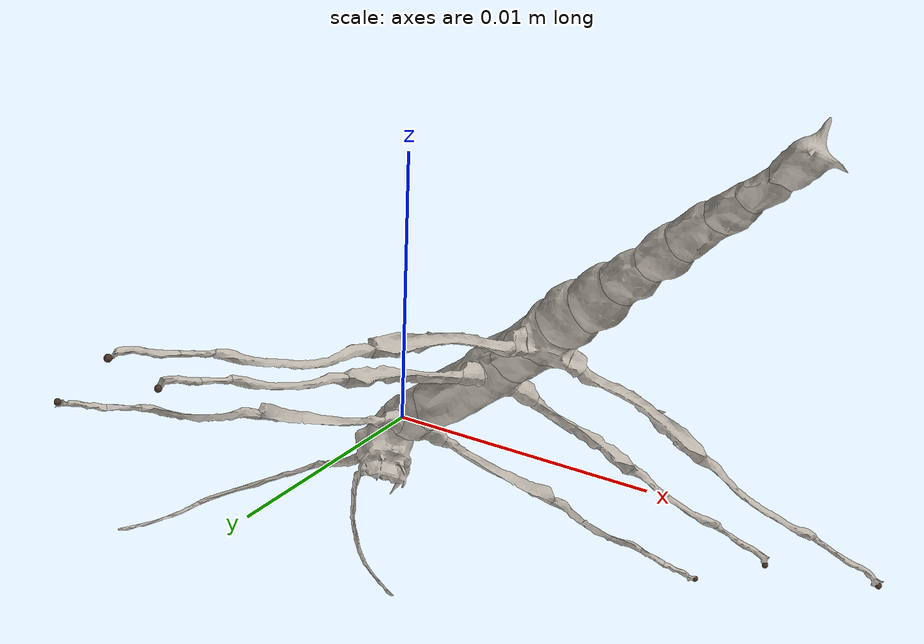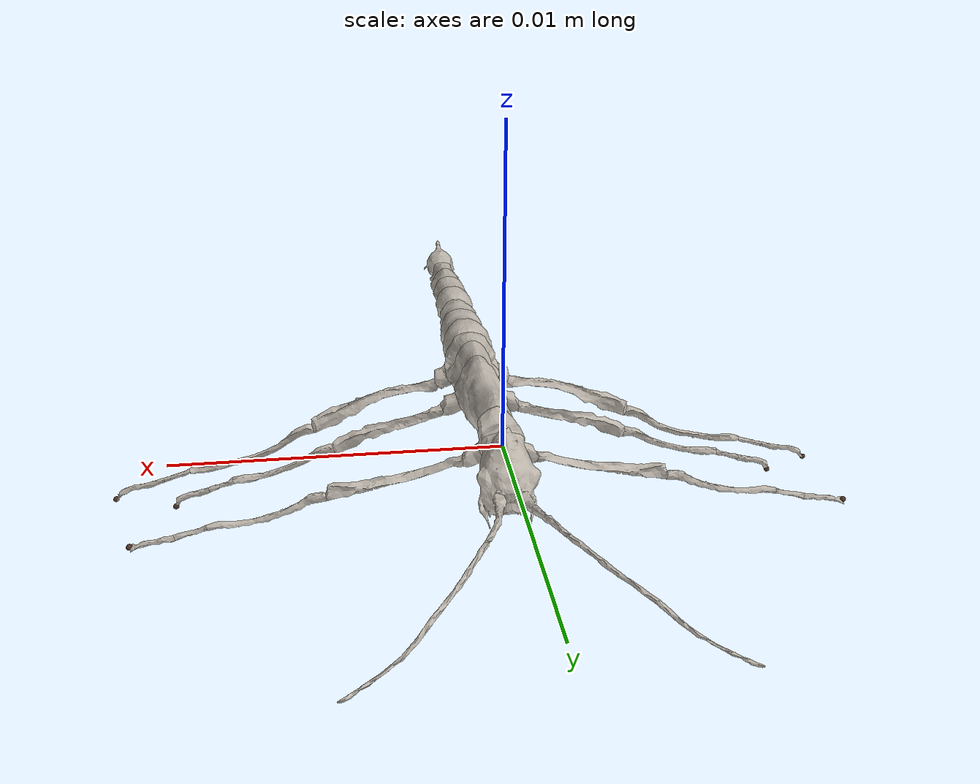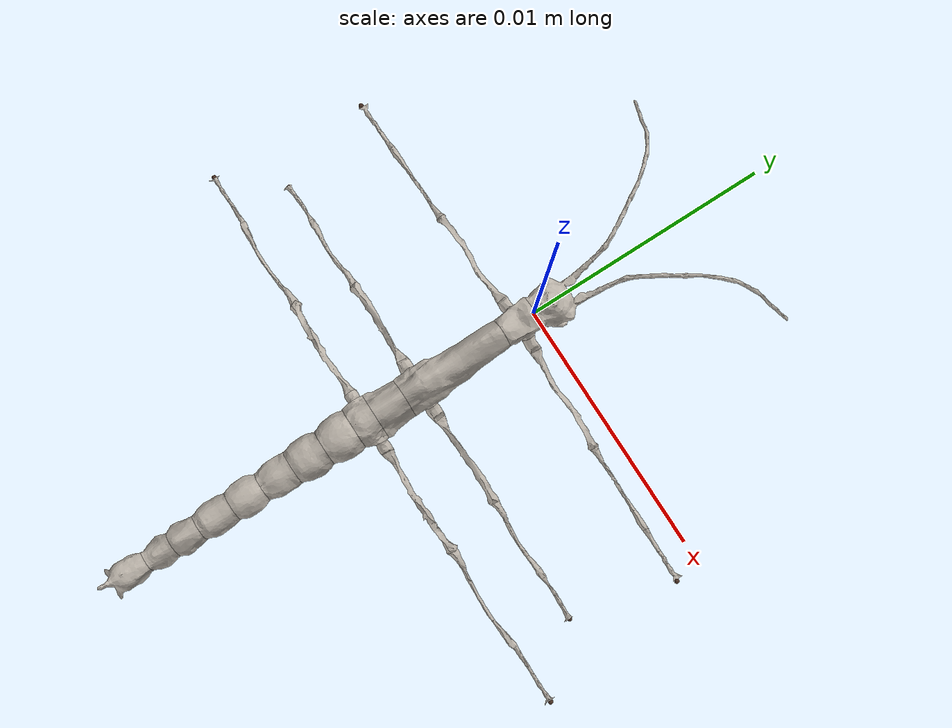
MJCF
<?xml version='1.0' encoding='utf-8'?>
<mujoco model="sungaya_mesh_fast">
  <default>
    <geom contype="0" conaffinity="0"/>
  </default>

  <include file="sungaya_inexpectata_mesh.xml"/>
</mujoco>

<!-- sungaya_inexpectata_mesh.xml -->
<mujoco model="sungaya">
    <option integrator="RK4"/>
    <visual>
        <global offwidth="2048" offheight="2048"/>
    </visual>
    <compiler angle="radian" autolimits="true"/>
    <custom>
        <numeric name="qpos0" data="0 0 0.05 0.7 0 0 0.7 0 0 0 0 0 0 0 0 0 0 0 0 0 0 0 0 0 0 0 0 0 0 0 0 0 0 0 0 0 0 0 0 0 0 0 0 0 0"/>
        <numeric name="dt" data="0.01"/>
        <numeric name="substeps" data="15"/>
        <numeric name="baumgarte_erp" data="0.1"/>
    </custom>
    <asset>
        <texture name="sungaya_tex" type="2d" file="stick_insect_urdf/meshes/obj/Sungaya_inexpectata_31mg.png"/>
        <material name="sungaya_mat" texture="sungaya_tex" specular="0.1" shininess="0.1"/>
        <mesh name="03-caput" file="stick_insect_urdf/meshes/obj/Sungaya_inexpectata_31mg.051.obj"/>
        <mesh name="04-t1" file="stick_insect_urdf/meshes/obj/Sungaya_inexpectata_31mg.016.obj"/>
        <mesh name="05-t2" file="stick_insect_urdf/meshes/obj/Sungaya_inexpectata_31mg.018.obj"/>
        <mesh name="06-t3" file="stick_insect_urdf/meshes/obj/Sungaya_inexpectata_31mg.019.obj"/>
        <mesh name="07-a2" file="stick_insect_urdf/meshes/obj/Sungaya_inexpectata_31mg.020.obj"/>
        <mesh name="08-a3" file="stick_insect_urdf/meshes/obj/Sungaya_inexpectata_31mg.021.obj"/>
        <mesh name="09-a4" file="stick_insect_urdf/meshes/obj/Sungaya_inexpectata_31mg.022.obj"/>
        <mesh name="10-a5" file="stick_insect_urdf/meshes/obj/Sungaya_inexpectata_31mg.023.obj"/>
        <mesh name="11-a6" file="stick_insect_urdf/meshes/obj/Sungaya_inexpectata_31mg.024.obj"/>
        <mesh name="12-a7" file="stick_insect_urdf/meshes/obj/Sungaya_inexpectata_31mg.025.obj"/>
        <mesh name="13-a8" file="stick_insect_urdf/meshes/obj/Sungaya_inexpectata_31mg.026.obj"/>
        <mesh name="14-a9" file="stick_insect_urdf/meshes/obj/Sungaya_inexpectata_31mg.027.obj"/>
        <mesh name="15-a10" file="stick_insect_urdf/meshes/obj/Sungaya_inexpectata_31mg.028.obj"/>
        <mesh name="16-f-l-coxa" file="stick_insect_urdf/meshes/obj/Sungaya_inexpectata_31mg.004.obj"/>
        <mesh name="17-f-l-femur" file="stick_insect_urdf/meshes/obj/Sungaya_inexpectata_31mg.003.obj"/>
        <mesh name="18-f-l-tibia" file="stick_insect_urdf/meshes/obj/Sungaya_inexpectata_31mg.002.obj"/>
        <mesh name="19-f-l-tarsus" file="stick_insect_urdf/meshes/obj/Sungaya_inexpectata_31mg.001.obj"/>
        <mesh name="20-f-l-claws" file="stick_insect_urdf/meshes/obj/Sungaya_inexpectata_31mg.obj"/>
        <mesh name="21-m-l-coxa" file="stick_insect_urdf/meshes/obj/Sungaya_inexpectata_31mg.009.obj"/>
        <mesh name="22-m-l-femur" file="stick_insect_urdf/meshes/obj/Sungaya_inexpectata_31mg.008.obj"/>
        <mesh name="23-m-l-tibia" file="stick_insect_urdf/meshes/obj/Sungaya_inexpectata_31mg.007.obj"/>
        <mesh name="24-m-l-tarsus" file="stick_insect_urdf/meshes/obj/Sungaya_inexpectata_31mg.006.obj"/>
        <mesh name="25-m-l-claws" file="stick_insect_urdf/meshes/obj/Sungaya_inexpectata_31mg.005.obj"/>
        <mesh name="26-h-l-coxa" file="stick_insect_urdf/meshes/obj/Sungaya_inexpectata_31mg.014.obj"/>
        <mesh name="27-h-l-femur" file="stick_insect_urdf/meshes/obj/Sungaya_inexpectata_31mg.013.obj"/>
        <mesh name="28-h-l-tibia" file="stick_insect_urdf/meshes/obj/Sungaya_inexpectata_31mg.012.obj"/>
        <mesh name="29-h-l-tarsus" file="stick_insect_urdf/meshes/obj/Sungaya_inexpectata_31mg.011.obj"/>
        <mesh name="30-h-l-claws" file="stick_insect_urdf/meshes/obj/Sungaya_inexpectata_31mg.010.obj"/>
        <mesh name="31-f-r-coxa" file="stick_insect_urdf/meshes/obj/Sungaya_inexpectata_31mg.039.obj"/>
        <mesh name="32-f-r-femur" file="stick_insect_urdf/meshes/obj/Sungaya_inexpectata_31mg.038.obj"/>
        <mesh name="33-f-r-tibia" file="stick_insect_urdf/meshes/obj/Sungaya_inexpectata_31mg.037.obj"/>
        <mesh name="35-f-r-tarsus" file="stick_insect_urdf/meshes/obj/Sungaya_inexpectata_31mg.036.obj"/>
        <mesh name="36-f-r-claws" file="stick_insect_urdf/meshes/obj/Sungaya_inexpectata_31mg.035.obj"/>
        <mesh name="37-m-r-coxa" file="stick_insect_urdf/meshes/obj/Sungaya_inexpectata_31mg.044.obj"/>
        <mesh name="38-m-r-femur" file="stick_insect_urdf/meshes/obj/Sungaya_inexpectata_31mg.043.obj"/>
        <mesh name="39-m-r-tibia" file="stick_insect_urdf/meshes/obj/Sungaya_inexpectata_31mg.042.obj"/>
        <mesh name="40-m-r-tarsus" file="stick_insect_urdf/meshes/obj/Sungaya_inexpectata_31mg.041.obj"/>
        <mesh name="41-m-r-claws" file="stick_insect_urdf/meshes/obj/Sungaya_inexpectata_31mg.040.obj"/>
        <mesh name="42-h-r-coxa" file="stick_insect_urdf/meshes/obj/Sungaya_inexpectata_31mg.049.obj"/>
        <mesh name="43-h-r-femur" file="stick_insect_urdf/meshes/obj/Sungaya_inexpectata_31mg.048.obj"/>
        <mesh name="44-h-r-tibia" file="stick_insect_urdf/meshes/obj/Sungaya_inexpectata_31mg.047.obj"/>
        <mesh name="45-h-r-tarsus" file="stick_insect_urdf/meshes/obj/Sungaya_inexpectata_31mg.046.obj"/>
        <mesh name="46-h-r-claws" file="stick_insect_urdf/meshes/obj/Sungaya_inexpectata_31mg.045.obj"/>
    </asset>
    <worldbody>
        <light diffuse=".75 .75 .75" pos="0 0 0.5" dir="0 0 -1"/>
        <body name="reference_base" pos="0 0 0">
            <joint armature="0" damping="0" limited="false" margin="0.01" name="root" pos="0 0 0" type="free"/>
            <site name="head" size="0.0001"/>
            <camera name="close_profile" mode="trackcom" pos=".04 -.04 .02" xyaxes="1 1 0 -0.5 0.5 2" fovy="35"/>
            <camera name="extreme_closeup" mode="trackcom" pos=".02 -.02 0.008" xyaxes="1 1 0 -1 1 4" fovy="30"/>
            <camera name="orbit_000" mode="trackcom" pos="0.0634 0.0000 0.0296" xyaxes="0.0000 1.0000 0.0000 -0.4226 0.0000 0.9063" fovy="40"/>
            <camera name="orbit_045" mode="trackcom" pos="0.0449 0.0449 0.0296" xyaxes="-0.7071 0.7071 0.0000 -0.2988 -0.2988 0.9063" fovy="40"/>
            <camera name="orbit_090" mode="trackcom" pos="0.0000 0.0634 0.0296" xyaxes="-1.0000 0.0000 0.0000 -0.0000 -0.4226 0.9063" fovy="40"/>
            <camera name="orbit_135" mode="trackcom" pos="-0.0449 0.0449 0.0296" xyaxes="-0.7071 -0.7071 0.0000 0.2988 -0.2988 0.9063" fovy="40"/>
            <camera name="orbit_180" mode="trackcom" pos="-0.0634 0.0000 0.0296" xyaxes="-0.0000 -1.0000 0.0000 0.4226 -0.0000 0.9063" fovy="40"/>
            <camera name="orbit_225" mode="trackcom" pos="-0.0449 -0.0449 0.0296" xyaxes="0.7071 -0.7071 0.0000 0.2988 0.2988 0.9063" fovy="40"/>
            <camera name="orbit_270" mode="trackcom" pos="-0.0000 -0.0634 0.0296" xyaxes="1.0000 -0.0000 0.0000 0.0000 0.4226 0.9063" fovy="40"/>
            <camera name="orbit_315" mode="trackcom" pos="0.0449 -0.0449 0.0296" xyaxes="0.7071 0.7071 -0.0000 -0.2988 0.2988 0.9063" fovy="40"/>
            <!-- Overhead, looking straight down (image right = world +x, up = +y). -->
            <camera name="top_down" mode="trackcom" pos="0 0 0.11" xyaxes="1 0 0 0 1 0" fovy="40"/>
            <geom name="03-caput" type="mesh" mesh="03-caput" pos="-4.93919e-06 0.0008534044 -0.00056868081" material="sungaya_mat" density="1000"/>
            <geom name="04-t1" type="mesh" mesh="04-t1" pos="5.17067e-06 -0.00071373116 -0.00015030356" material="sungaya_mat" density="1000"/>
            <body name="04-t1-l" pos="4.212954e-05 -0.00142994616 -0.00024617367">
                <joint type="hinge" name="04-t1-l" pos="0 0 0" axis="1 0 7.55e-08" range="-0.087266 0.087266" />
                <geom name="05-t2" type="mesh" mesh="05-t2" pos="-1.168428e-05 -0.00229186984 -4.027273e-05" material="sungaya_mat" density="1000"/>
                <body name="05-t2-l" pos="-1.4549e-06 -0.0043079881 -3.550776e-05">
                    <joint type="hinge" name="05-t2-l" pos="0 0 0" axis="1 0 7.55e-08" range="-0.087266 0.087266" />
                    <geom name="06-t3" type="mesh" mesh="06-t3" pos="5.37896e-06 -0.0006546122 -4.160991e-05" material="sungaya_mat" density="1000"/>
                    <body name="06-t3-l" pos="-1.602613e-05 -0.00127102528 2.06451e-06">
                        <joint type="hinge" name="06-t3-l" pos="0 0 0" axis="1 0 7.55e-08" range="-0.087266 0.087266" />
                        <geom name="07-a2" type="mesh" mesh="07-a2" pos="2.221604e-05 -0.00044320215 3.139261e-05" material="sungaya_mat" density="1000"/>
                        <body name="07-a2-l" pos="2.542162e-05 -0.00090925378 0.00010091614">
                            <joint type="hinge" name="07-a2-l" pos="0 0 0" axis="1 0 7.55e-08" range="-1.134464 1.134464"/>
                            <geom name="08-a3" type="mesh" mesh="08-a3" pos="3.80757e-06 -0.0006355982 2.586899e-05" material="sungaya_mat" density="1000"/>
                            <body name="08-a3-l" pos="8.07024e-06 -0.00129344233 5.316696e-05">
                                <joint type="hinge" name="08-a3-l" pos="0 0 0" axis="1 0 7.55e-08" range="-1.134464 1.134464"/>
                                <geom name="09-a4" type="mesh" mesh="09-a4" pos="4.23251e-06 -0.00064921647 -4.324162e-05" material="sungaya_mat" density="1000"/>
                                <body name="09-a4-l" pos="8.11249e-06 -0.00134961947 4.000925e-05">
                                    <joint type="hinge" name="09-a4-l" pos="0 0 0" axis="1 0 7.55e-08" range="-1.134464 1.134464"/>
                                    <geom name="10-a5" type="mesh" mesh="10-a5" pos="3.93223e-06 -0.00062264595 -3.370976e-05" material="sungaya_mat" density="1000"/>
                                    <body name="10-a5-l" pos="8.62755e-06 -0.00131172151 -2.10435e-05">
                                        <joint type="hinge" name="10-a5-l" pos="0 0 0" axis="1 0 7.55e-08" range="-1.134464 1.134464"/>
                                        <geom name="11-a6" type="mesh" mesh="11-a6" pos="3.77219e-06 -0.00064754183 2.410548e-05" material="sungaya_mat" density="1000"/>
                                        <body name="11-a6-l" pos="8.04149e-06 -0.00126429298 5.285629e-05">
                                            <joint type="hinge" name="11-a6-l" pos="0 0 0" axis="1 0 7.55e-08" range="-1.134464 1.134464"/>
                                            <geom name="12-a7" type="mesh" mesh="12-a7" pos="4.16505e-06 -0.00067832135 3.601049e-05" material="sungaya_mat" density="1000"/>
                                            <body name="12-a7-l" pos="2.355316e-05 -0.00140457414 -1.607895e-05">
                                                <joint type="hinge" name="12-a7-l" pos="0 0 0" axis="1 0 7.55e-08" range="-1.134464 1.134464"/>
                                                <geom name="13-a8" type="mesh" mesh="13-a8" pos="-1.192655e-05 -0.00055250432 2.861764e-05" material="sungaya_mat" density="1000"/>
                                                <body name="13-a8-l" pos="-7.70643e-06 -0.00113178045 0.00013272798">
                                                    <joint type="hinge" name="13-a8-l" pos="0 0 0" axis="1 0 7.55e-08" range="-1.134464 1.134464"/>
                                                    <geom name="14-a9" type="mesh" mesh="14-a9" pos="2.90333e-06 -0.00050837733 -9.902848e-05" material="sungaya_mat" density="1000"/>
                                                    <body name="14-a9-l" pos="6.80901e-06 -0.00109023508 -9.047122e-05">
                                                        <joint type="hinge" name="14-a9-l" pos="0 0 0" axis="1 0 7.55e-08" range="-1.134464 1.134464"/>
                                                        <geom name="15-a10" type="mesh" mesh="15-a10" pos="4.78492e-06 -0.0007736003 6.360079e-05" material="sungaya_mat" density="1000"/>
                                                    </body>
                                                </body>
                                            </body>
                                        </body>
                                    </body>
                                </body>
                            </body>
                        </body>
                        <body name="26-h-l-coxa-l" pos="-0.00081721315 -0.00035620795 -0.00046644267">
                            <joint type="hinge" name="26-h-l-coxa-l" pos="0 0 0" axis="0 0 1" range="-3.14159 3.14159"/>
                            <geom name="26-h-l-coxa" type="mesh" mesh="26-h-l-coxa" pos="-0.00022547226 2.339086e-05 -0.00010656845" material="sungaya_mat" density="1000"/>
                            <body name="27-h-l-femur-l" pos="-0.00042385235 4.569365e-05 -0.00030739477">
                                <joint type="hinge" name="27-h-l-femur-l" pos="0 0 0" axis="0 -1 -4.371e-08" range="-3.14159 3.14159"/>
                                <geom name="27-h-l-femur" type="mesh" mesh="27-h-l-femur" pos="-0.00254038163 -6.491935e-05 -0.00075768569" material="sungaya_mat" density="1000"/>
                                <body name="28-h-l-tibia-l" pos="-0.00447626784 -1.959066e-05 -0.00153649854">
                                    <inertial pos="0 0 0" mass="1.200e-06" diaginertia="1.350e-14 4.067e-13 4.067e-13"/>
                                    <joint type="hinge" name="28-h-l-tibia-l" pos="0 0 0" axis="0 -1 -4.371e-08" range="-3.14159 3.14159"/>
                                    <geom name="28-h-l-tibia" type="mesh" mesh="28-h-l-tibia" pos="-0.00199367991 -8.205551e-05 -0.00078430958" material="sungaya_mat" density="1000"/>
                                    <body name="29-h-l-tarsus-l" pos="-0.00449651713 -3.206206e-05 -0.00141770416">
                                        <inertial pos="0 0 0" mass="6.000e-07" diaginertia="6.750e-15 2.034e-13 2.034e-13"/>
                                        <joint type="hinge" name="29-h-l-tarsus-l" pos="0 0 0" axis="0 -1 -4.371e-08" range="-0.349066 0.349066"/>
                                        <geom name="29-h-l-tarsus" type="mesh" mesh="29-h-l-tarsus" pos="-0.00042561069 5.40953e-06 -0.00014981977" material="sungaya_mat" density="1000"/>
                                        <body name="30-h-l-claws-l" pos="-0.00091560278 7.69488e-06 -0.00029699854">
                                            <inertial pos="0 0 0" mass="2.000e-07" diaginertia="2.250e-15 6.779e-14 6.779e-14"/>
                                            <joint type="hinge" name="30-h-l-claws-l" pos="0 0 0" axis="0 -1 -4.371e-08" range="-1.570796 0.000000"/>
                                            <geom name="30-h-l-claws" type="mesh" mesh="30-h-l-claws" pos="-0.00094383769 -1.53131e-05 -0.00026759366" material="sungaya_mat" density="1000"/>
                                            <geom name="claw_collide_hl" type="sphere" size="0.0001" pos="-0.00176783769 -1.83131e-05 -0.00067259366" contype="1" conaffinity="1" condim="3" rgba="0.3 0.2 0.15 1"/>
                                        </body>
                                    </body>
                                </body>
                            </body>
                        </body>
                        <body name="42-h-r-coxa-l" pos="0.00086174608 -0.000345635 -0.00046515831">
                            <joint type="hinge" name="42-h-r-coxa-l" pos="0 0 0" axis="0 0 1" range="-3.14159 3.14159"/>
                            <geom name="42-h-r-coxa" type="mesh" mesh="42-h-r-coxa" pos="0.00022532267 2.622965e-05 -0.00010622357" material="sungaya_mat" density="1000"/>
                            <body name="43-h-r-femur-l" pos="0.00042371207 5.103106e-05 -0.0003067471">
                                <joint type="hinge" name="43-h-r-femur-l" pos="0 0 0" axis="0 -1 -4.371e-08" range="-3.14159 3.14159"/>
                                <geom name="43-h-r-femur" type="mesh" mesh="43-h-r-femur" pos="0.0025421537 -3.291393e-05 -0.00075379765" material="sungaya_mat" density="1000"/>
                                <body name="44-h-r-tibia-l" pos="0.00447850488 3.679947e-05 -0.00152964774">
                                    <inertial pos="0 0 0" mass="1.200e-06" diaginertia="1.350e-14 4.067e-13 4.067e-13"/>
                                    <joint type="hinge" name="44-h-r-tibia-l" pos="0 0 0" axis="0 -1 -4.371e-08" range="-3.14159 3.14159"/>
                                    <geom name="44-h-r-tibia" type="mesh" mesh="44-h-r-tibia" pos="0.00199575583 -5.69335e-05 -0.0007812588" material="sungaya_mat" density="1000"/>
                                    <body name="45-h-r-tarsus-l" pos="0.00449872622 2.45836e-05 -0.00141082448">
                                        <inertial pos="0 0 0" mass="6.000e-07" diaginertia="6.750e-15 2.034e-13 2.034e-13"/>
                                        <joint type="hinge" name="45-h-r-tarsus-l" pos="0 0 0" axis="0 -1 -4.371e-08" range="-0.349066 0.349066"/>
                                        <geom name="45-h-r-tarsus" type="mesh" mesh="45-h-r-tarsus" pos="0.00042573921 1.077104e-05 -0.00014916877" material="sungaya_mat" density="1000"/>
                                        <body name="46-h-r-claws-l" pos="0.0009158887 1.922884e-05 -0.00029559783">
                                            <inertial pos="0 0 0" mass="2.000e-07" diaginertia="2.250e-15 6.779e-14 6.779e-14"/>
                                            <joint type="hinge" name="46-h-r-claws-l" pos="0 0 0" axis="-1.907e-08 -1 -4.371e-08" range="0.000000 1.570796"/>
                                            <geom name="46-h-r-claws" type="mesh" mesh="46-h-r-claws" pos="0.00094436482 -3.42238e-06 -0.00026615011" material="sungaya_mat" density="1000"/>
                                            <geom name="claw_collide_hr" type="sphere" size="0.0001" pos="0.00176936482 3.57762e-06 -0.00067015011" contype="1" conaffinity="1" condim="3" rgba="0.3 0.2 0.15 1"/>
                                        </body>
                                    </body>
                                </body>
                            </body>
                        </body>
                    </body>
                    <body name="21-m-l-coxa-l" pos="-0.00071249704 0.00073767244 -0.00045217428">
                        <joint type="hinge" name="21-m-l-coxa-l" pos="0 0 0" axis="0 0 1" range="-3.14159 3.14159"/>
                        <geom name="21-m-l-coxa" type="mesh" mesh="21-m-l-coxa" pos="-0.00027025153 -4.02329e-05 -0.00012987666" material="sungaya_mat" density="1000"/>
                        <body name="22-m-l-femur-l" pos="-0.00063080399 -3.517978e-05 -0.00031548744">
                            <joint type="hinge" name="22-m-l-femur-l" pos="0 0 0" axis="0 -1 -4.371e-08" range="-3.14159 3.14159"/>
                            <geom name="22-m-l-femur" type="mesh" mesh="22-m-l-femur" pos="-0.00210535526 7.364876e-05 -0.00060791074" material="sungaya_mat" density="1000"/>
                            <body name="23-m-l-tibia-l" pos="-0.00373081351 8.107792e-05 -0.00116356998">
                                <inertial pos="0 0 0" mass="1.200e-06" diaginertia="1.350e-14 4.067e-13 4.067e-13"/>
                                <joint type="hinge" name="23-m-l-tibia-l" pos="0 0 0" axis="0 -1 -4.371e-08" range="-3.14159 3.14159"/>
                                <geom name="23-m-l-tibia" type="mesh" mesh="23-m-l-tibia" pos="-0.0015941062 -3.561354e-05 -0.00056001171" material="sungaya_mat" density="1000"/>
                                <body name="24-m-l-tarsus-l" pos="-0.00345331943 -7.4762e-07 -0.00104214554">
                                    <inertial pos="0 0 0" mass="6.000e-07" diaginertia="6.750e-15 2.034e-13 2.034e-13"/>
                                    <joint type="hinge" name="24-m-l-tarsus-l" pos="0 0 0" axis="0 -1 -4.371e-08" range="-0.349066 0.349066"/>
                                    <geom name="24-m-l-tarsus" type="mesh" mesh="24-m-l-tarsus" pos="-0.00038003828 9.70718e-06 -0.00011728588" material="sungaya_mat" density="1000"/>
                                    <body name="25-m-l-claws-l" pos="-0.00083134137 2.904632e-05 -0.00025122333">
                                        <inertial pos="0 0 0" mass="2.000e-07" diaginertia="2.250e-15 6.779e-14 6.779e-14"/>
                                        <joint type="hinge" name="25-m-l-claws-l" pos="0 0 0" axis="0 -1 -4.371e-08" range="-1.570796 0.000000"/>
                                        <geom name="25-m-l-claws" type="mesh" mesh="25-m-l-claws" pos="-0.00065638963 -3.338582e-05 -0.00020578038" material="sungaya_mat" density="1000"/>
                                        <geom name="claw_collide_ml" type="sphere" size="0.0001" pos="-0.00115938963 -3.338582e-05 -0.00057778038" contype="1" conaffinity="1" condim="3" rgba="0.3 0.2 0.15 1"/>
                                    </body>
                                </body>
                            </body>
                        </body>
                    </body>
                    <body name="37-m-r-coxa-l" pos="0.00069518527 0.000746537 -0.00045109761">
                        <joint type="hinge" name="37-m-r-coxa-l" pos="0 0 0" axis="0 0 1" range="-3.14159 3.14159"/>
                        <geom name="37-m-r-coxa" type="mesh" mesh="37-m-r-coxa" pos="0.00027093512 -3.682473e-05 -0.00012946269" material="sungaya_mat" density="1000"/>
                        <body name="38-m-r-femur-l" pos="0.0006316778 -2.722791e-05 -0.00031452236">
                            <joint type="hinge" name="38-m-r-femur-l" pos="0 0 0" axis="0 -1 -4.371e-08" range="-3.14159 3.14159"/>
                            <geom name="38-m-r-femur" type="mesh" mesh="38-m-r-femur" pos="0.00210518856 0.00010016328 -0.00060469005" material="sungaya_mat" density="1000"/>
                            <body name="39-m-r-tibia-l" pos="0.00373127311 0.00012806733 -0.00115786097">
                                <inertial pos="0 0 0" mass="1.200e-06" diaginertia="1.350e-14 4.067e-13 4.067e-13"/>
                                <joint type="hinge" name="39-m-r-tibia-l" pos="0 0 0" axis="0 -1 -4.371e-08" range="-3.14159 3.14159"/>
                                <geom name="39-m-r-tibia" type="mesh" mesh="39-m-r-tibia" pos="0.00159528293 -1.552957e-05 -0.00055757165" material="sungaya_mat" density="1000"/>
                                <body name="40-m-r-tarsus-l" pos="0.00345464516 4.275376e-05 -0.00103686168">
                                    <inertial pos="0 0 0" mass="6.000e-07" diaginertia="6.750e-15 2.034e-13 2.034e-13"/>
                                    <joint type="hinge" name="40-m-r-tarsus-l" pos="0 0 0" axis="0 -1 -4.371e-08" range="-0.349066 0.349066"/>
                                    <geom name="40-m-r-tarsus" type="mesh" mesh="40-m-r-tarsus" pos="0.00038006436 1.449347e-05 -0.0001167038" material="sungaya_mat" density="1000"/>
                                    <body name="41-m-r-claws-l" pos="0.00083129201 3.951602e-05 -0.00024995045">
                                        <inertial pos="0 0 0" mass="2.000e-07" diaginertia="2.250e-15 6.779e-14 6.779e-14"/>
                                        <joint type="hinge" name="41-m-r-claws-l" pos="0 0 0" axis="0 -1 -4.371e-08" range="0.000000 1.570796"/>
                                        <geom name="41-m-r-claws" type="mesh" mesh="41-m-r-claws" pos="0.00065707322 -2.511451e-05 -0.00020477572" material="sungaya_mat" density="1000"/>
                                        <geom name="claw_collide_mr" type="sphere" size="0.0001" pos="0.00116007322 -1.911451e-05 -0.00057577572" contype="1" conaffinity="1" condim="3" rgba="0.3 0.2 0.15 1"/>
                                    </body>
                                </body>
                            </body>
                        </body>
                    </body>
                </body>
                <body name="16-f-l-coxa-l" pos="-0.00058466167 0.0008655265 -0.00026834305">
                    <joint type="hinge" name="16-f-l-coxa-l" pos="0 0 0" axis="0 0 1" range="-3.14159 3.14159"/>
                    <geom name="16-f-l-coxa" type="mesh" mesh="16-f-l-coxa" pos="-0.0002788456 -3.884686e-05 -5.26107e-05" material="sungaya_mat" density="1000"/>
                    <body name="17-f-l-femur-l" pos="-0.00062062964 -3.040908e-05 -0.00020541716">
                        <joint type="hinge" name="17-f-l-femur-l" pos="0 0 0" axis="0 -1 -4.371e-08" range="-3.14159 3.14159"/>
                        <geom name="17-f-l-femur" type="mesh" mesh="17-f-l-femur" pos="-0.00236304384 -6.913254e-05 -0.00054229825" material="sungaya_mat" density="1000"/>
                        <body name="18-f-l-tibia-l" pos="-0.00421774574 -8.422183e-05 -0.00099440338">
                            <inertial pos="0 0 0" mass="1.200e-06" diaginertia="1.350e-14 4.067e-13 4.067e-13"/>
                            <joint type="hinge" name="18-f-l-tibia-l" pos="0 0 0" axis="0 -1 -4.371e-08" range="-3.14159 3.14159"/>
                            <geom name="18-f-l-tibia" type="mesh" mesh="18-f-l-tibia" pos="-0.00163057772 2.05496e-06 -0.00038302678" material="sungaya_mat" density="1000"/>
                            <body name="19-f-l-tarsus-l" pos="-0.00369065069 2.67429e-06 -0.00080730731">
                                <inertial pos="0 0 0" mass="6.000e-07" diaginertia="6.750e-15 2.034e-13 2.034e-13"/>
                                <joint type="hinge" name="19-f-l-tarsus-l" pos="0 0 0" axis="0 -1 -4.371e-08" range="-0.349066 0.349066"/>
                                <geom name="19-f-l-tarsus" type="mesh" mesh="19-f-l-tarsus" pos="-0.00049544778 -4.03821e-06 -0.00014018174" material="sungaya_mat" density="1000"/>
                                <body name="20-f-l-claws-l" pos="-0.00100061204 -2.044067e-05 -0.00028160657">
                                    <inertial pos="0 0 0" mass="2.000e-07" diaginertia="2.250e-15 6.779e-14 6.779e-14"/>
                                    <joint type="hinge" name="20-f-l-claws-l" pos="0 0 0" axis="0 -1 -4.371e-08" range="-1.570796 0.000000"/>
                                    <geom name="20-f-l-claws" type="mesh" mesh="20-f-l-claws" pos="-0.00063120201 1.842389e-05 -0.00010398612" material="sungaya_mat" density="1000"/>
                                    <geom name="claw_collide_fl" type="sphere" size="0.0001" pos="-0.00138520201 -2.057611e-05 -0.00024198612" contype="1" conaffinity="1" condim="3" rgba="0.3 0.2 0.15 1"/>
                                </body>
                            </body>
                        </body>
                    </body>
                </body>
                <body name="31-f-r-coxa-l" pos="0.00050825079 0.00087240804 -0.00026750666">
                    <joint type="hinge" name="31-f-r-coxa-l" pos="0 0 0" axis="0 0 1" range="-3.14159 3.14159"/>
                    <geom name="31-f-r-coxa" type="mesh" mesh="31-f-r-coxa" pos="0.00027939276 -3.533019e-05 -5.218346e-05" material="sungaya_mat" density="1000"/>
                    <body name="32-f-r-femur-l" pos="0.00062127545 -2.25869e-05 -0.0002044678">
                        <joint type="hinge" name="32-f-r-femur-l" pos="0 0 0" axis="0 -1 -4.371e-08" range="-3.14159 3.14159"/>
                        <geom name="32-f-r-femur" type="mesh" mesh="32-f-r-femur" pos="0.00236455328 -3.936188e-05 -0.00053868175" material="sungaya_mat" density="1000"/>
                        <body name="33-f-r-tibia-l" pos="0.00421998743 -3.108755e-05 -0.00098794978">
                            <inertial pos="0 0 0" mass="1.200e-06" diaginertia="1.350e-14 4.067e-13 4.067e-13"/>
                            <joint type="hinge" name="33-f-r-tibia-l" pos="0 0 0" axis="0 -1 -4.371e-08" range="-3.14159 3.14159"/>
                            <geom name="33-f-r-tibia" type="mesh" mesh="33-f-r-tibia" pos="0.001631008 2.259435e-05 -0.000380532" material="sungaya_mat" density="1000"/>
                            <body name="35-f-r-tarsus-l" pos="0.0036915564 4.916172e-05 -0.00080165907">
                                <inertial pos="0 0 0" mass="6.000e-07" diaginertia="6.750e-15 2.034e-13 2.034e-13"/>
                                <joint type="hinge" name="35-f-r-tarsus-l" pos="0 0 0" axis="0 -1 -4.371e-08" range="-0.349066 0.349066"/>
                                <geom name="35-f-r-tarsus" type="mesh" mesh="35-f-r-tarsus" pos="0.00049567223 2.20397e-06 -0.00013942318" material="sungaya_mat" density="1000"/>
                                <body name="36-f-r-claws-l" pos="0.0010012202 -7.83429e-06 -0.00028007594">
                                    <inertial pos="0 0 0" mass="2.000e-07" diaginertia="2.250e-15 6.779e-14 6.779e-14"/>
                                    <joint type="hinge" name="36-f-r-claws-l" pos="0 0 0" axis="0 -1 -4.371e-08" range="0.000000 1.570796"/>
                                    <geom name="36-f-r-claws" type="mesh" mesh="36-f-r-claws" pos="0.00063108001 2.637226e-05 -0.00010302081" material="sungaya_mat" density="1000"/>
                                    <geom name="claw_collide_fr" type="sphere" size="0.0001" pos="0.00138508001 -3.62774e-06 -0.00024002081" contype="1" conaffinity="1" condim="3" rgba="0.3 0.2 0.15 1"/>
                                </body>
                            </body>
                        </body>
                    </body>
                </body>
            </body>
        </body>
    </worldbody>
    <actuator>
        <motor forcelimited="true" forcerange="-10 10" ctrllimited="true" ctrlrange="-1.0 1.0" gear="1" name="04-t1-l" joint="04-t1-l" />
        <motor forcelimited="true" forcerange="-10 10" ctrllimited="true" ctrlrange="-1.0 1.0" gear="1" name="05-t2-l" joint="05-t2-l" />
        <motor forcelimited="true" forcerange="-10 10" ctrllimited="true" ctrlrange="-1.0 1.0" gear="1" name="06-t3-l" joint="06-t3-l" />
        <motor forcelimited="true" forcerange="-10 10" ctrllimited="true" ctrlrange="-1.0 1.0" gear="1" name="07-a2-l" joint="07-a2-l"/>
        <motor forcelimited="true" forcerange="-10 10" ctrllimited="true" ctrlrange="-1.0 1.0" gear="1" name="08-a3-l" joint="08-a3-l"/>
        <motor forcelimited="true" forcerange="-10 10" ctrllimited="true" ctrlrange="-1.0 1.0" gear="1" name="09-a4-l" joint="09-a4-l"/>
        <motor forcelimited="true" forcerange="-10 10" ctrllimited="true" ctrlrange="-1.0 1.0" gear="1" name="10-a5-l" joint="10-a5-l"/>
        <motor forcelimited="true" forcerange="-10 10" ctrllimited="true" ctrlrange="-1.0 1.0" gear="1" name="11-a6-l" joint="11-a6-l"/>
        <motor forcelimited="true" forcerange="-10 10" ctrllimited="true" ctrlrange="-1.0 1.0" gear="1" name="12-a7-l" joint="12-a7-l"/>
        <motor forcelimited="true" forcerange="-10 10" ctrllimited="true" ctrlrange="-1.0 1.0" gear="1" name="13-a8-l" joint="13-a8-l"/>
        <motor forcelimited="true" forcerange="-10 10" ctrllimited="true" ctrlrange="-1.0 1.0" gear="1" name="14-a9-l" joint="14-a9-l"/>
        <motor forcelimited="true" forcerange="-10 10" ctrllimited="true" ctrlrange="-1.0 1.0" gear="1" name="16-f-l-coxa-l" joint="16-f-l-coxa-l"/>
        <motor forcelimited="true" forcerange="-10 10" ctrllimited="true" ctrlrange="-1.0 1.0" gear="1" name="17-f-l-femur-l" joint="17-f-l-femur-l"/>
        <motor forcelimited="true" forcerange="-10 10" ctrllimited="true" ctrlrange="-1.0 1.0" gear="1" name="18-f-l-tibia-l" joint="18-f-l-tibia-l"/>
        <motor forcelimited="true" forcerange="-10 10" ctrllimited="true" ctrlrange="-1.0 1.0" gear="1" name="19-f-l-tarsus-l" joint="19-f-l-tarsus-l"/>
        <motor forcelimited="true" forcerange="-10 10" ctrllimited="true" ctrlrange="-1.0 1.0" gear="1" name="20-f-l-claws-l" joint="20-f-l-claws-l"/>
        <motor forcelimited="true" forcerange="-10 10" ctrllimited="true" ctrlrange="-1.0 1.0" gear="1" name="21-m-l-coxa-l" joint="21-m-l-coxa-l"/>
        <motor forcelimited="true" forcerange="-10 10" ctrllimited="true" ctrlrange="-1.0 1.0" gear="1" name="22-m-l-femur-l" joint="22-m-l-femur-l"/>
        <motor forcelimited="true" forcerange="-10 10" ctrllimited="true" ctrlrange="-1.0 1.0" gear="1" name="23-m-l-tibia-l" joint="23-m-l-tibia-l"/>
        <motor forcelimited="true" forcerange="-10 10" ctrllimited="true" ctrlrange="-1.0 1.0" gear="1" name="24-m-l-tarsus-l" joint="24-m-l-tarsus-l"/>
        <motor forcelimited="true" forcerange="-10 10" ctrllimited="true" ctrlrange="-1.0 1.0" gear="1" name="25-m-l-claws-l" joint="25-m-l-claws-l"/>
        <motor forcelimited="true" forcerange="-10 10" ctrllimited="true" ctrlrange="-1.0 1.0" gear="1" name="26-h-l-coxa-l" joint="26-h-l-coxa-l"/>
        <motor forcelimited="true" forcerange="-10 10" ctrllimited="true" ctrlrange="-1.0 1.0" gear="1" name="27-h-l-femur-l" joint="27-h-l-femur-l"/>
        <motor forcelimited="true" forcerange="-10 10" ctrllimited="true" ctrlrange="-1.0 1.0" gear="1" name="28-h-l-tibia-l" joint="28-h-l-tibia-l"/>
        <motor forcelimited="true" forcerange="-10 10" ctrllimited="true" ctrlrange="-1.0 1.0" gear="1" name="29-h-l-tarsus-l" joint="29-h-l-tarsus-l"/>
        <motor forcelimited="true" forcerange="-10 10" ctrllimited="true" ctrlrange="-1.0 1.0" gear="1" name="30-h-l-claws-l" joint="30-h-l-claws-l"/>
        <motor forcelimited="true" forcerange="-10 10" ctrllimited="true" ctrlrange="-1.0 1.0" gear="1" name="31-f-r-coxa-l" joint="31-f-r-coxa-l"/>
        <motor forcelimited="true" forcerange="-10 10" ctrllimited="true" ctrlrange="-1.0 1.0" gear="1" name="32-f-r-femur-l" joint="32-f-r-femur-l"/>
        <motor forcelimited="true" forcerange="-10 10" ctrllimited="true" ctrlrange="-1.0 1.0" gear="1" name="33-f-r-tibia-l" joint="33-f-r-tibia-l"/>
        <motor forcelimited="true" forcerange="-10 10" ctrllimited="true" ctrlrange="-1.0 1.0" gear="1" name="35-f-r-tarsus-l" joint="35-f-r-tarsus-l"/>
        <motor forcelimited="true" forcerange="-10 10" ctrllimited="true" ctrlrange="-1.0 1.0" gear="1" name="36-f-r-claws-l" joint="36-f-r-claws-l"/>
        <motor forcelimited="true" forcerange="-10 10" ctrllimited="true" ctrlrange="-1.0 1.0" gear="1" name="37-m-r-coxa-l" joint="37-m-r-coxa-l"/>
        <motor forcelimited="true" forcerange="-10 10" ctrllimited="true" ctrlrange="-1.0 1.0" gear="1" name="38-m-r-femur-l" joint="38-m-r-femur-l"/>
        <motor forcelimited="true" forcerange="-10 10" ctrllimited="true" ctrlrange="-1.0 1.0" gear="1" name="39-m-r-tibia-l" joint="39-m-r-tibia-l"/>
        <motor forcelimited="true" forcerange="-10 10" ctrllimited="true" ctrlrange="-1.0 1.0" gear="1" name="40-m-r-tarsus-l" joint="40-m-r-tarsus-l"/>
        <motor forcelimited="true" forcerange="-10 10" ctrllimited="true" ctrlrange="-1.0 1.0" gear="1" name="41-m-r-claws-l" joint="41-m-r-claws-l"/>
        <motor forcelimited="true" forcerange="-10 10" ctrllimited="true" ctrlrange="-1.0 1.0" gear="1" name="42-h-r-coxa-l" joint="42-h-r-coxa-l"/>
        <motor forcelimited="true" forcerange="-10 10" ctrllimited="true" ctrlrange="-1.0 1.0" gear="1" name="43-h-r-femur-l" joint="43-h-r-femur-l"/>
        <motor forcelimited="true" forcerange="-10 10" ctrllimited="true" ctrlrange="-1.0 1.0" gear="1" name="44-h-r-tibia-l" joint="44-h-r-tibia-l"/>
        <motor forcelimited="true" forcerange="-10 10" ctrllimited="true" ctrlrange="-1.0 1.0" gear="1" name="45-h-r-tarsus-l" joint="45-h-r-tarsus-l"/>
        <motor forcelimited="true" forcerange="-10 10" ctrllimited="true" ctrlrange="-1.0 1.0" gear="1" name="46-h-r-claws-l" joint="46-h-r-claws-l"/>
    </actuator>
    <sensor>
        <framepos name="04-t1-l" objtype="body" objname="04-t1-l"/>
        <accelerometer name="accelerometer" site="head"/>
        <velocimeter name="velocimeter" site="head"/>
        <gyro name="gyro" site="head"/>
    </sensor>
</mujoco>
